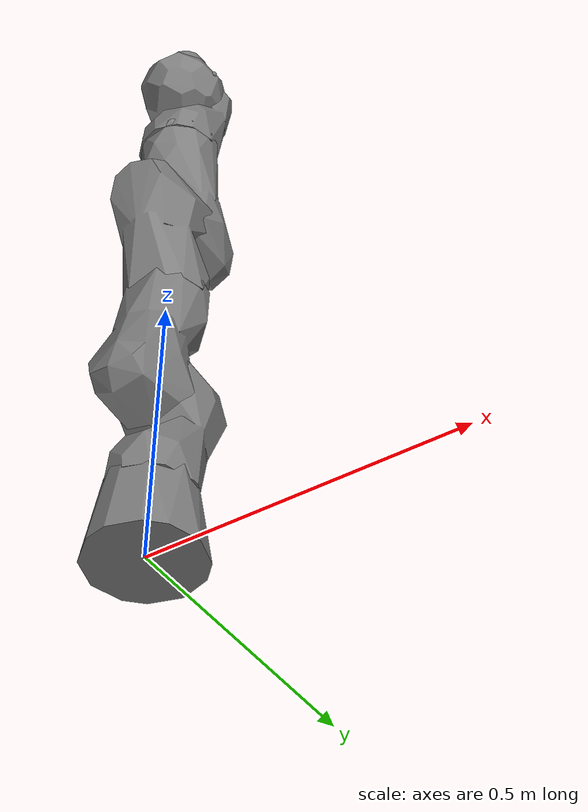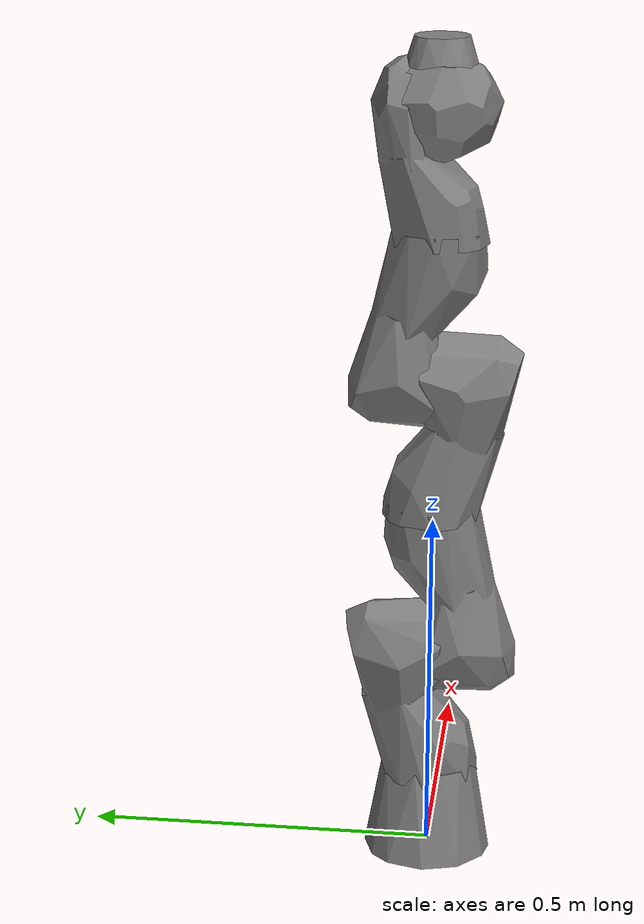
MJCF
<mujoco model="structural_body">
  <compiler angle="radian"/>

  <asset>
    <mesh name="arm_base_convex" file="meshes_arm/convex/arm_base_convex.stl"/>
    <mesh name="arm_segment_a_convex" file="meshes_arm/convex/arm_segment_a_convex.stl"/>
    <mesh name="arm_segment_b_convex" file="meshes_arm/convex/arm_segment_b_convex.stl"/>
    <mesh name="arm_segment_last_convex" file="meshes_arm/convex/arm_segment_last_convex.stl"/>
    <mesh name="arm_wrist_convex" file="meshes_arm/convex/arm_wrist_convex.stl"/>
    <mesh name="arm_flanche_convex" file="meshes_arm/convex/arm_flanche_convex.stl"/>
  </asset>

  <worldbody>
    <body name="body_0000">
      <inertial pos="0 0 0.055" quat="0.707107 0.707107 0 0" mass="0" diaginertia="0.00381667 0.00381667 0.0036"/>
      <geom type="mesh" mesh="arm_base_convex"/>
      <site name="robot_base" pos="0 0 0"/>
      <body name="body_0001" pos="0 0 0.11">
        <inertial pos="0 0.04 0.13" mass="2" diaginertia="0.0136667 0.0118667 0.003"/>
        <joint name="axis_0000" pos="0 0 0" axis="0 0 1" range="-2.96706 2.96706" actuatorfrcrange="-204 204" damping="0.1"/>
        <geom quat="0 0 0 1" type="mesh" mesh="arm_segment_a_convex"/>
        <body name="body_0002" pos="0 0 0.2">
          <inertial pos="0 -0.04 0.07" mass="2" diaginertia="0.0136667 0.0118667 0.003"/>
          <joint name="axis_0001" pos="0 0 0" axis="0 -1 0" range="-1.5708 1.5708" actuatorfrcrange="-306 306" damping="0.1"/>
          <geom pos="0 0 0.2" quat="0 0 1 0" type="mesh" mesh="arm_segment_b_convex"/>
          <body name="body_0003" pos="0 0 0.2">
            <inertial pos="0 -0.04 0.13" mass="2" diaginertia="0.0136667 0.0118667 0.003"/>
            <joint name="axis_0002" pos="0 0 0" axis="0 0 1" range="-2.96706 2.96706" actuatorfrcrange="-204 204" damping="0.1"/>
            <geom type="mesh" mesh="arm_segment_a_convex"/>
            <body name="body_0004" pos="0 0 0.2">
              <inertial pos="0 0.04 0.07" mass="2" diaginertia="0.0136667 0.0118667 0.003"/>
              <joint name="axis_0003" pos="0 0 0" axis="0 1 0" range="-2.0944 2.0944" actuatorfrcrange="-306 306" damping="0.1"/>
              <geom pos="0 0 0.2" quat="0 -1 0 0" type="mesh" mesh="arm_segment_b_convex"/>
              <body name="body_0005" pos="0 0 0.2">
                <inertial pos="0 0.02 0.124" mass="2" diaginertia="0.0126507 0.0108507 0.003"/>
                <joint name="axis_0004" pos="0 0 0" axis="0 0 1" range="-2.96706 2.96706" actuatorfrcrange="-204 204" damping="0.1"/>
                <geom pos="0 0 0" quat="0 0 0 1" type="mesh" mesh="arm_segment_last_convex"/>
                <body name="body_0006" pos="0 0 0.19">
                  <inertial pos="0 0 0" mass="2" diaginertia="0.00520833 0.00520833 0.00520833"/>
                  <joint name="axis_0005" pos="0 0 0" axis="0 -1 0" range="-2.0944 2.0944" actuatorfrcrange="-306 306" damping="0.1"/>
                  <geom quat="0 0 0 1" type="mesh" mesh="arm_wrist_convex"/>
                  <site name="body_0006_tip" pos="0.0743989 -0.00875121 0.00206081"/>
                  <site name="body_0006_wrist" pos="0 0 0"/>
                  <body name="body_0007" pos="0 0 0.078">
                    <inertial pos="0 0 0" mass="2" diaginertia="0.000833333 0.000833333 0.000833333"/>
                    <joint name="axis_0006" pos="0 0 0" axis="0 0 1" range="-2.96706 2.96706" actuatorfrcrange="-204 204" damping="0.1"/>
                    <geom quat="0 0 0 1" type="mesh" mesh="arm_flanche_convex"/>
                  </body>
                </body>
              </body>
            </body>
          </body>
        </body>
      </body>
    </body>
  </worldbody>

  <actuator>
    <general name="axis_0000_motor" joint="axis_0000" ctrllimited="true" ctrlrange="-204 204" forcelimited="true" forcerange="-204 204"/>
    <general name="axis_0001_motor" joint="axis_0001" ctrllimited="true" ctrlrange="-306 306" forcelimited="true" forcerange="-306 306"/>
    <general name="axis_0002_motor" joint="axis_0002" ctrllimited="true" ctrlrange="-204 204" forcelimited="true" forcerange="-204 204"/>
    <general name="axis_0003_motor" joint="axis_0003" ctrllimited="true" ctrlrange="-306 306" forcelimited="true" forcerange="-306 306"/>
    <general name="axis_0004_motor" joint="axis_0004" ctrllimited="true" ctrlrange="-204 204" forcelimited="true" forcerange="-204 204"/>
    <general name="axis_0005_motor" joint="axis_0005" ctrllimited="true" ctrlrange="-306 306" forcelimited="true" forcerange="-306 306"/>
    <general name="axis_0006_motor" joint="axis_0006" ctrllimited="true" ctrlrange="-204 204" forcelimited="true" forcerange="-204 204"/>
  </actuator>
</mujoco>
